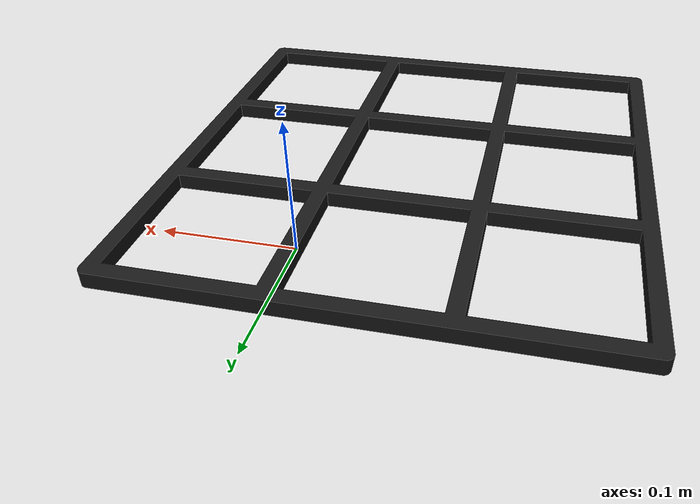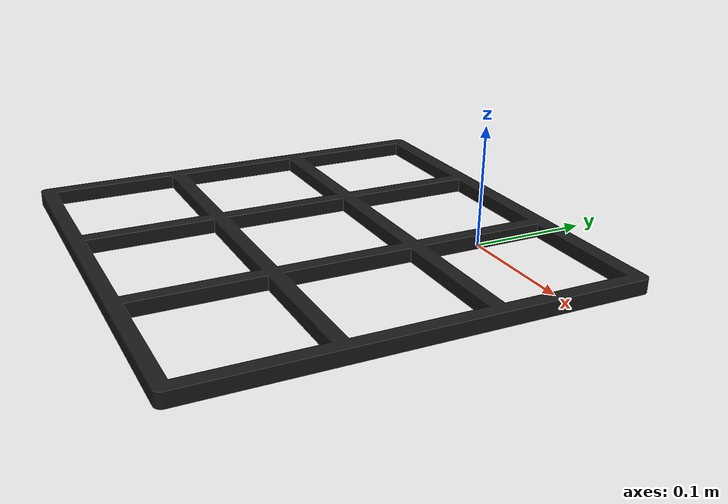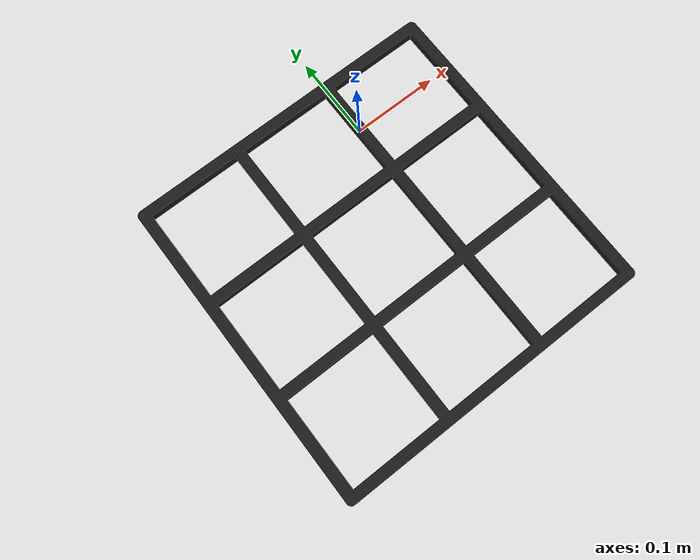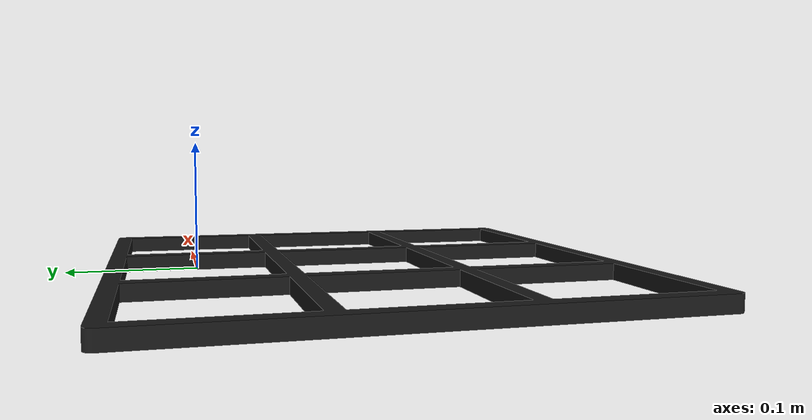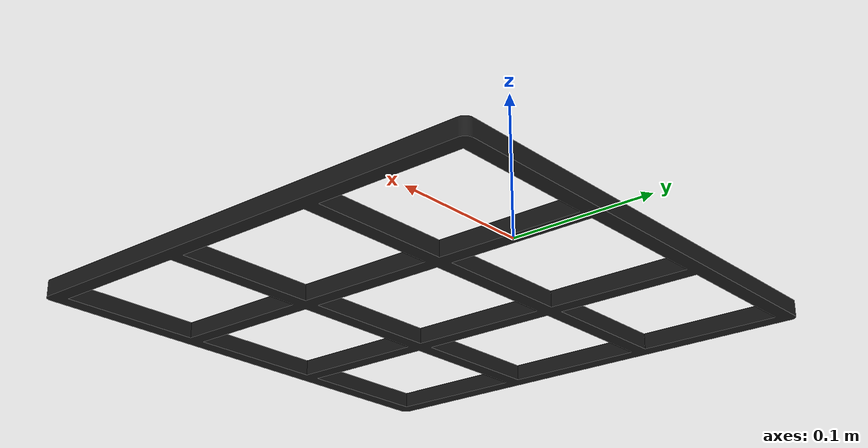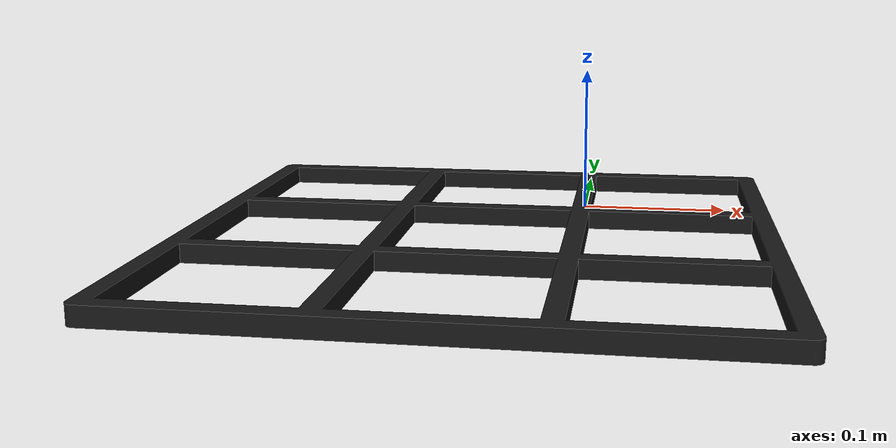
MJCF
<mujoco model="board">
  <asset>
    <mesh file="/Users/killuaa/Desktop/mujoco_sim/self_environment/stl_things/files/Board.stl" name="board_mesh" scale="0.004 0.004 0.004"/>  <!-- Adjust to 0.8 if STL in meters -->
    <texture file="/Users/killuaa/Desktop/mujoco_sim/self_environment/stl_things/images/Part_Studio_1_-_Board_x1.png" type="2d" name="tex-board" />
    <material name="board_material" reflectance="0.5" rgba="0.1 0.1 0.1 1"/>
  </asset>
  <worldbody>
    <body>
      <body name="object">
        <!-- Visual geom: Mesh for appearance, no contacts if static -->
        <geom pos="0 0 0" mesh="board_mesh" type="mesh" material="board_material" group="1" contype="1" conaffinity="1"/>

        <!-- Collision geom: Approximate flat board with box (adjust size) -->
        <geom pos="0 0 0" type="box" size="0.15 0.15 0.05" solimp="0.998 0.998 0.001" solref="0.001 1" density="1000" friction="0.95 0.3 0.1" group="0" condim="4" rgba="0 0 0 0"/>  <!-- Half-lengths: width, depth, height -->
        <inertial pos="0 0 0" mass="0.5" diaginertia="0.01 0.01 0.01"/>  <!-- Higher mass for static; adjust -->
      </body>
      <site rgba="0 0 0 0" size="0.005" pos="0 0 -0.045" name="bottom_site"/>  <!-- Adjust to bottom -->
      <site rgba="0 0 0 0" size="0.005" pos="0 0 0.03" name="top_site"/>  <!-- Adjust to top -->
      <site rgba="0 0 0 0" size="0.005" pos="0.15 0 0" name="horizontal_radius_site"/>  <!-- Adjust to half-width -->
    </body>
  </worldbody>
</mujoco>
